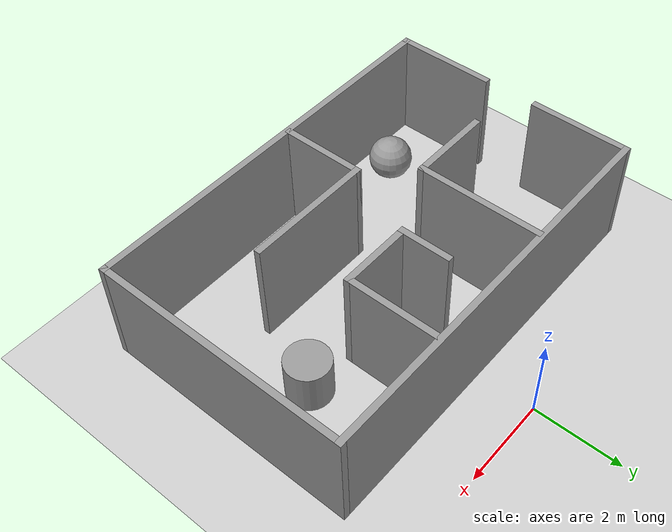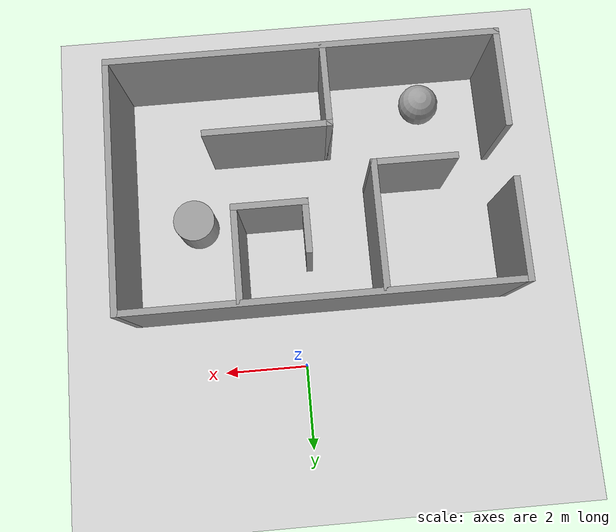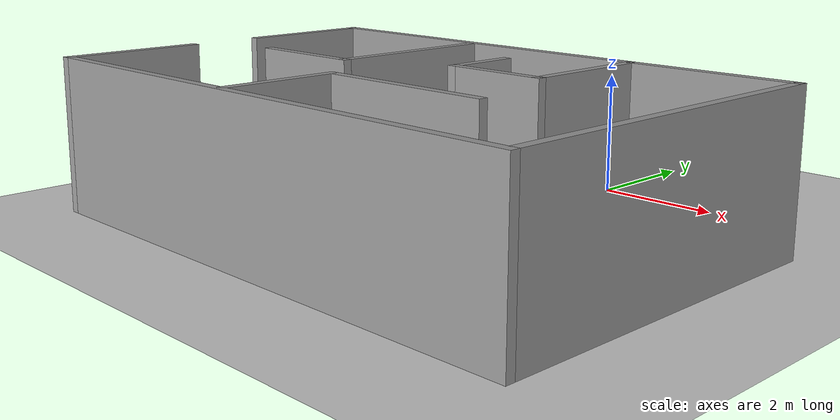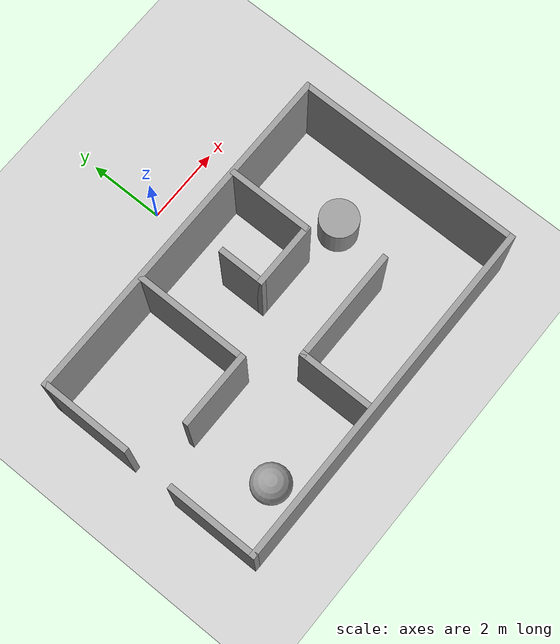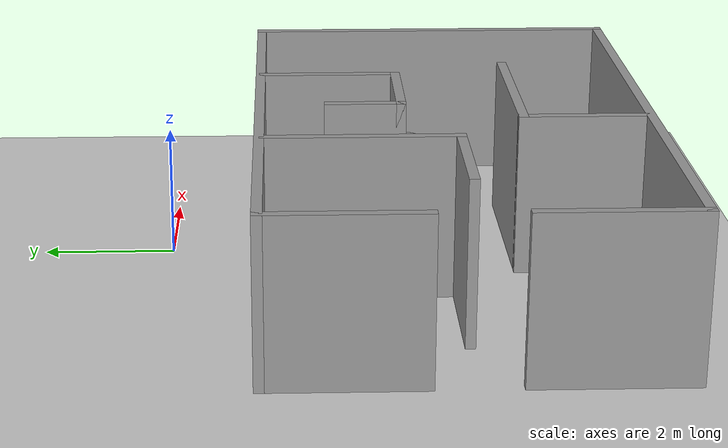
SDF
<sdf version="1.7">
 <world name="default">
  <light name="sun" type="directional">
   <pose>0 0 10 0 -0 0</pose>
   <diffuse>0.8 0.8 0.8 1</diffuse>
   <specular>0.2 0.2 0.2 1</specular>
   <attenuation>
    <range>1000</range>
    <constant>0.9</constant>
    <linear>0.01</linear>
    <quadratic>0.001</quadratic>
   </attenuation>
   <direction>-0.5 0.1 -0.9</direction>
   <spot><inner_angle>0</inner_angle><outer_angle>0</outer_angle><falloff>0</falloff></spot>
  </light>
  <model name="ground_plane">
   <static>1</static>
   <link name="link">
    <collision name="collision">
     <geometry><plane><normal>0 0 1</normal><size>100 100</size></plane></geometry>
     <surface><friction><ode><mu>100</mu><mu2>50</mu2></ode></friction></surface>
    </collision>
    <visual name="visual">
     <cast_shadows>0</cast_shadows>
     <geometry><plane><normal>0 0 1</normal><size>100 100</size></plane></geometry>
     <material>
      <script><uri>file://media/materials/scripts/gazebo.material</uri><name>Gazebo/Grey</name></script>
     </material>
    </visual>
   </link>
  </model>
  <gravity>0 0 -9.8</gravity>
  <magnetic_field>6e-06 2.3e-05 -4.2e-05</magnetic_field>
  <atmosphere type="adiabatic"/>
  <physics type="ode">
   <max_step_size>0.001</max_step_size>
   <real_time_factor>1</real_time_factor>
   <real_time_update_rate>1000</real_time_update_rate>
  </physics>
  <scene><ambient>0.4 0.4 0.4 1</ambient><background>0.7 0.7 0.7 1</background><shadows>1</shadows></scene>
  <audio><device>default</device></audio>
  <spherical_coordinates>
   <surface_model>EARTH_WGS84</surface_model>
   <latitude_deg>0</latitude_deg>
   <longitude_deg>0</longitude_deg>
   <elevation>0</elevation>
   <heading_deg>0</heading_deg>
  </spherical_coordinates>
  <model name="room">
   <pose>-0.487859 -3.6562 0 0 -0 0</pose>
   <link name="Wall_0">
    <collision name="Wall_0_Collision">
     <geometry><box><size>2.4 0.15 2.5</size></box></geometry>
     <pose>0 0 1.25 0 -0 0</pose>
    </collision>
    <visual name="Wall_0_Visual">
     <pose>0 0 1.25 0 -0 0</pose>
     <geometry><box><size>2.4 0.15 2.5</size></box></geometry>
     <material>
      <script><uri>file://media/materials/scripts/gazebo.material</uri><name>Gazebo/Grey</name></script>
      <ambient>1 1 1 1</ambient>
     </material>
     <meta><layer>0</layer></meta>
    </visual>
    <pose>-4.55 -2.456205 0 0 -0 -1.5708</pose>
   </link>
   <link name="Wall_0_door_upper">
    <collision name="Wall_0_door_upper_Collision">
     <geometry><box><size>2.4 0.15 2.5</size></box></geometry>
     <pose>0 0 1.25 0 -0 0</pose>
    </collision>
    <visual name="Wall_0_door_upper_Visual">
     <pose>0 0 1.25 0 -0 0</pose>
     <geometry><box><size>2.4 0.15 2.5</size></box></geometry>
     <material>
      <script><uri>file://media/materials/scripts/gazebo.material</uri><name>Gazebo/Grey</name></script>
      <ambient>1 1 1 1</ambient>
     </material>
     <meta><layer>0</layer></meta>
    </visual>
    <pose>-4.55 1.143795 0 0 -0 -1.5708</pose>
   </link>
   <link name="Wall_10">
    <collision name="Wall_10_Collision">
     <geometry><box><size>3 0.15 2.5</size></box></geometry>
     <pose>0 0 1.25 0 -0 0</pose>
    </collision>
    <visual name="Wall_10_Visual">
     <pose>0 0 1.25 0 -0 0</pose>
     <geometry><box><size>3 0.15 2.5</size></box></geometry>
     <material>
      <script><uri>file://media/materials/scripts/gazebo.material</uri><name>Gazebo/Grey</name></script>
      <ambient>1 1 1 1</ambient>
     </material>
     <meta><layer>0</layer></meta>
    </visual>
    <pose>0.936077 -1.66746 0 0 -0 0</pose>
   </link>
   <link name="Wall_12">
    <collision name="Wall_12_Collision">
     <geometry><box><size>2.25 0.15 2.5</size></box></geometry>
     <pose>0 0 1.25 0 -0 0</pose>
    </collision>
    <visual name="Wall_12_Visual">
     <pose>0 0 1.25 0 -0 0</pose>
     <geometry><box><size>2.25 0.15 2.5</size></box></geometry>
     <material>
      <script><uri>file://media/materials/scripts/gazebo.material</uri><name>Gazebo/Grey</name></script>
      <ambient>1 1 1 1</ambient>
     </material>
     <meta><layer>0</layer></meta>
    </visual>
    <pose>1.82414 1.16491 0 0 -0 -1.5708</pose>
   </link>
   <link name="Wall_13">
    <collision name="Wall_13_Collision">
     <geometry><box><size>1.75 0.15 2.5</size></box></geometry>
     <pose>0 0 1.25 0 -0 0</pose>
    </collision>
    <visual name="Wall_13_Visual">
     <pose>0 0 1.25 0 -0 0</pose>
     <geometry><box><size>1.75 0.15 2.5</size></box></geometry>
     <material>
      <script><uri>file://media/materials/scripts/gazebo.material</uri><name>Gazebo/Grey</name></script>
      <ambient>1 1 1 1</ambient>
     </material>
     <meta><layer>0</layer></meta>
    </visual>
    <pose>1.02414 0.114909 0 0 -0 3.14159</pose>
   </link>
   <link name="Wall_14">
    <collision name="Wall_14_Collision">
     <geometry><box><size>1.25 0.15 2.5</size></box></geometry>
     <pose>0 0 1.25 0 -0 0</pose>
    </collision>
    <visual name="Wall_14_Visual">
     <pose>0 0 1.25 0 -0 0</pose>
     <geometry><box><size>1.25 0.15 2.5</size></box></geometry>
     <material>
      <script><uri>file://media/materials/scripts/gazebo.material</uri><name>Gazebo/Grey</name></script>
      <ambient>1 1 1 1</ambient>
     </material>
     <meta><layer>0</layer></meta>
    </visual>
    <pose>0.224138 0.664909 0 0 -0 1.5708</pose>
   </link>
   <link name="Wall_2">
    <collision name="Wall_2_Collision">
     <geometry><box><size>9.25 0.15 2.5</size></box></geometry>
     <pose>0 0 1.25 0 -0 0</pose>
    </collision>
    <visual name="Wall_2_Visual">
     <pose>0 0 1.25 0 -0 0</pose>
     <geometry><box><size>9.25 0.15 2.5</size></box></geometry>
     <material>
      <script><uri>file://media/materials/scripts/gazebo.material</uri><name>Gazebo/Grey</name></script>
      <ambient>1 1 1 1</ambient>
     </material>
     <meta><layer>0</layer></meta>
    </visual>
    <pose>-0 2.26879 0 0 -0 0</pose>
   </link>
   <link name="Wall_3">
    <collision name="Wall_3_Collision">
     <geometry><box><size>6 0.15 2.5</size></box></geometry>
     <pose>0 0 1.25 0 -0 0</pose>
    </collision>
    <visual name="Wall_3_Visual">
     <pose>0 0 1.25 0 -0 0</pose>
     <geometry><box><size>6 0.15 2.5</size></box></geometry>
     <material>
      <script><uri>file://media/materials/scripts/gazebo.material</uri><name>Gazebo/Grey</name></script>
      <ambient>1 1 1 1</ambient>
     </material>
     <meta><layer>0</layer></meta>
    </visual>
    <pose>4.55 -0.656205 0 0 -0 -1.5708</pose>
   </link>
   <link name="Wall_4">
    <collision name="Wall_4_Collision">
     <geometry><box><size>9.25 0.15 2.5</size></box></geometry>
     <pose>0 0 1.25 0 -0 0</pose>
    </collision>
    <visual name="Wall_4_Visual">
     <pose>0 0 1.25 0 -0 0</pose>
     <geometry><box><size>9.25 0.15 2.5</size></box></geometry>
     <material>
      <script><uri>file://media/materials/scripts/gazebo.material</uri><name>Gazebo/Grey</name></script>
      <ambient>1 1 1 1</ambient>
     </material>
     <meta><layer>0</layer></meta>
    </visual>
    <pose>-0 -3.58121 0 0 -0 3.14159</pose>
   </link>
   <link name="Wall_6">
    <collision name="Wall_6_Collision">
     <geometry><box><size>3 0.15 2.5</size></box></geometry>
     <pose>0 0 1.25 0 -0 0</pose>
    </collision>
    <visual name="Wall_6_Visual">
     <pose>0 0 1.25 0 -0 0</pose>
     <geometry><box><size>3 0.15 2.5</size></box></geometry>
     <material>
      <script><uri>file://media/materials/scripts/gazebo.material</uri><name>Gazebo/Grey</name></script>
      <ambient>1 1 1 1</ambient>
     </material>
     <meta><layer>0</layer></meta>
    </visual>
    <pose>-1.39403 0.769795 0 0 -0 -1.5708</pose>
   </link>
   <link name="Wall_7">
    <collision name="Wall_7_Collision">
     <geometry><box><size>2 0.15 2.5</size></box></geometry>
     <pose>0 0 1.25 0 -0 0</pose>
    </collision>
    <visual name="Wall_7_Visual">
     <pose>0 0 1.25 0 -0 0</pose>
     <geometry><box><size>2 0.15 2.5</size></box></geometry>
     <material>
      <script><uri>file://media/materials/scripts/gazebo.material</uri><name>Gazebo/Grey</name></script>
      <ambient>1 1 1 1</ambient>
     </material>
     <meta><layer>0</layer></meta>
    </visual>
    <pose>-2.31903 -0.655205 0 0 -0 3.14159</pose>
   </link>
   <link name="Wall_9">
    <collision name="Wall_9_Collision">
     <geometry><box><size>2 0.15 2.5</size></box></geometry>
     <pose>0 0 1.25 0 -0 0</pose>
    </collision>
    <visual name="Wall_9_Visual">
     <pose>0 0 1.25 0 -0 0</pose>
     <geometry><box><size>2 0.15 2.5</size></box></geometry>
     <material>
      <script><uri>file://media/materials/scripts/gazebo.material</uri><name>Gazebo/Grey</name></script>
      <ambient>1 1 1 1</ambient>
     </material>
     <meta><layer>0</layer></meta>
    </visual>
    <pose>-0.488923 -2.59246 0 0 -0 1.5708</pose>
   </link>
   <static>1</static>
  </model>
  <model name="unit_cylinder">
   <pose>2.43971 -3.68144 0.499993 -3e-06 -4e-06 -0</pose>
   <link name="link">
    <inertial>
     <mass>1</mass>
     <inertia><ixx>0.145833</ixx><ixy>0</ixy><ixz>0</ixz><iyy>0.145833</iyy><iyz>0</iyz><izz>0.125</izz></inertia>
    </inertial>
    <collision name="collision">
     <geometry><cylinder><radius>0.5</radius><length>1</length></cylinder></geometry>
    </collision>
    <visual name="visual">
     <geometry><cylinder><radius>0.5</radius><length>1</length></cylinder></geometry>
     <material>
      <script><name>Gazebo/Grey</name><uri>file://media/materials/scripts/gazebo.material</uri></script>
     </material>
    </visual>
   </link>
  </model>
  <model name="unit_sphere">
   <pose>-3.39526 -6.36463 0.5 0 -0 0</pose>
   <link name="link">
    <inertial>
     <mass>1</mass>
     <inertia><ixx>0.1</ixx><ixy>0</ixy><ixz>0</ixz><iyy>0.1</iyy><iyz>0</iyz><izz>0.1</izz></inertia>
    </inertial>
    <collision name="collision"><geometry><sphere><radius>0.5</radius></sphere></geometry></collision>
    <visual name="visual">
     <geometry><sphere><radius>0.5</radius></sphere></geometry>
     <material>
      <script><name>Gazebo/Grey</name><uri>file://media/materials/scripts/gazebo.material</uri></script>
     </material>
    </visual>
   </link>
  </model>
 </world>
</sdf>
